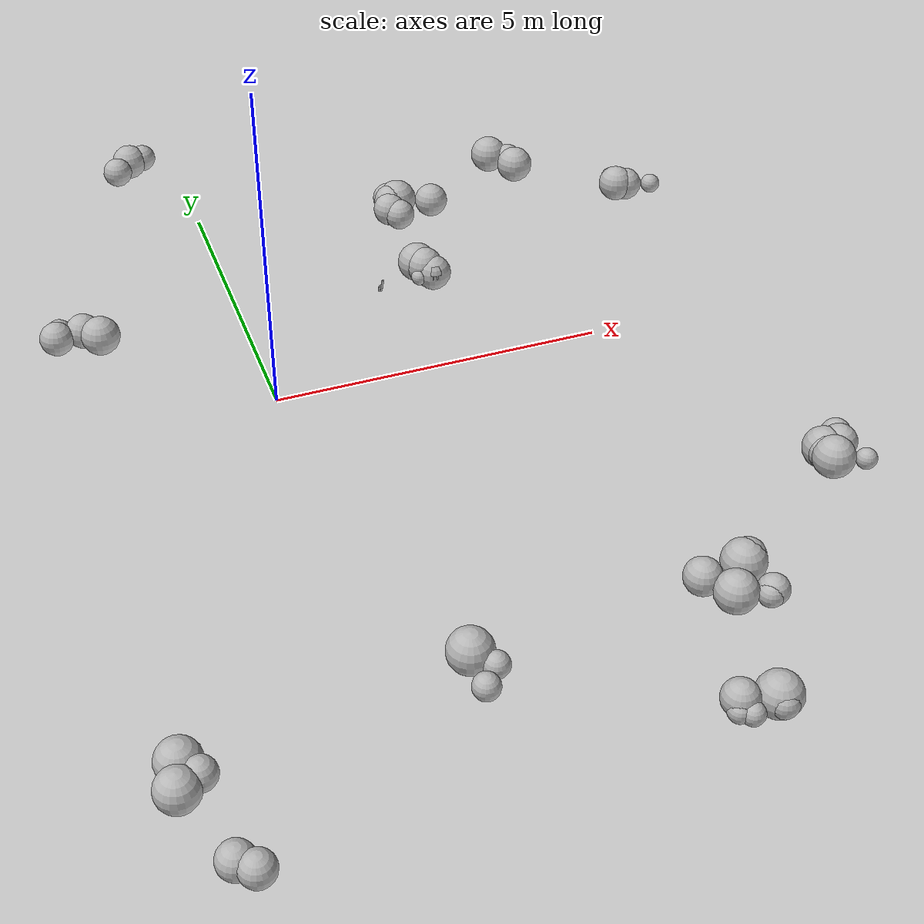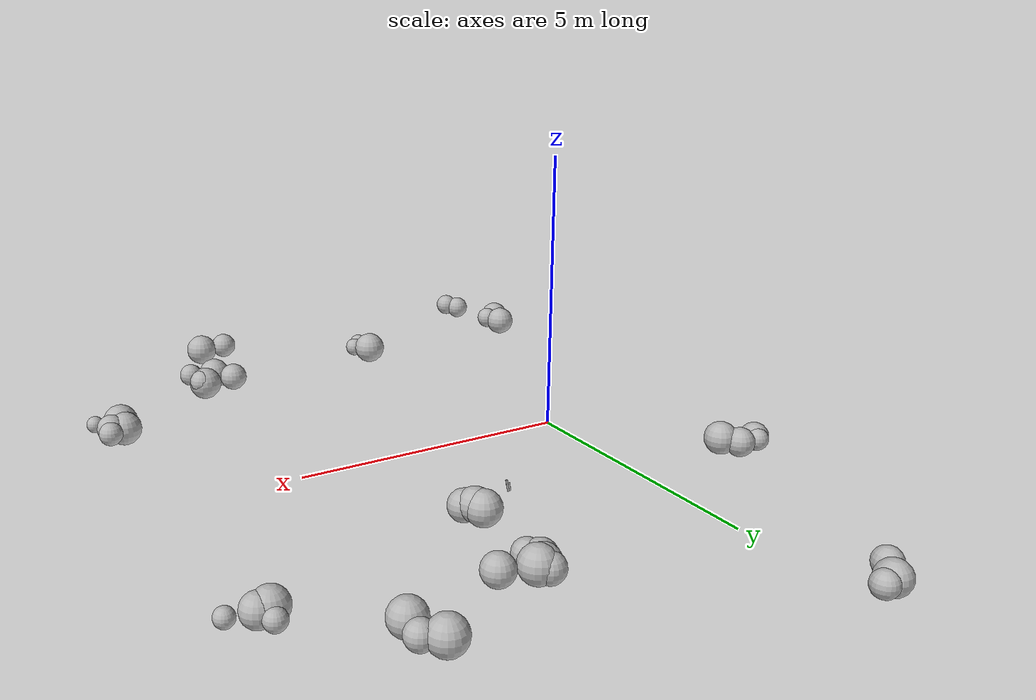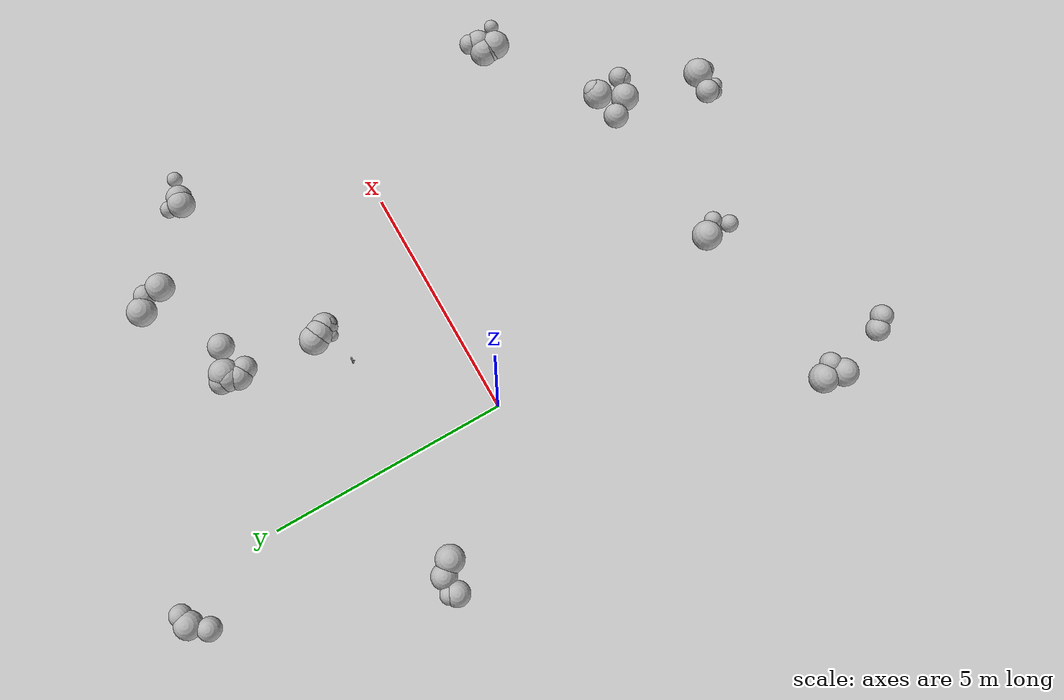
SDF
<sdf version="1.6">
 <world name="default">
  <model name="rock_44">
   <static>true</static>
   <link name="stone0">
    <pose>-2.3756 2.5651 0.0451 0 0 2.188</pose>
    <visual name="stone0_v">
     <geometry><sphere><radius>0.2664</radius></sphere></geometry>
     <material>
      <script>
       <uri>model://bushfire/materials/scripts</uri>
       <uri>model://bushfire/materials/textures</uri>
       <name>Bushfire/Rock</name>
      </script>
     </material>
    </visual>
   </link>
   <link name="stone1">
    <pose>-2.7897 2.4955 0.0442 0 0 1.252</pose>
    <visual name="stone1_v">
     <geometry><sphere><radius>0.2603</radius></sphere></geometry>
     <material>
      <script>
       <uri>model://bushfire/materials/scripts</uri>
       <uri>model://bushfire/materials/textures</uri>
       <name>Bushfire/Rock</name>
      </script>
     </material>
    </visual>
   </link>
   <link name="stone2">
    <pose>-2.1517 2.3070 0.0814 0 0 2.748</pose>
    <visual name="stone2_v">
     <geometry><sphere><radius>0.2985</radius></sphere></geometry>
     <material>
      <script>
       <uri>model://bushfire/materials/scripts</uri>
       <uri>model://bushfire/materials/textures</uri>
       <name>Bushfire/Rock</name>
      </script>
     </material>
    </visual>
   </link>
   <link name="stone3">
    <pose>-2.7273 2.6309 0.0515 0 0 1.274</pose>
    <visual name="stone3_v">
     <geometry><sphere><radius>0.2045</radius></sphere></geometry>
     <material>
      <script>
       <uri>model://bushfire/materials/scripts</uri>
       <uri>model://bushfire/materials/textures</uri>
       <name>Bushfire/Rock</name>
      </script>
     </material>
    </visual>
   </link>
  </model>
  <model name="rock_45">
   <static>true</static>
   <link name="stone0">
    <pose>3.0464 2.5984 0.0729 0 0 1.663</pose>
    <visual name="stone0_v">
     <geometry><sphere><radius>0.3096</radius></sphere></geometry>
     <material>
      <script>
       <uri>model://bushfire/materials/scripts</uri>
       <uri>model://bushfire/materials/textures</uri>
       <name>Bushfire/Rock</name>
      </script>
     </material>
    </visual>
   </link>
   <link name="stone1">
    <pose>3.2072 2.2348 0.0654 0 0 1.491</pose>
    <visual name="stone1_v">
     <geometry><sphere><radius>0.2198</radius></sphere></geometry>
     <material>
      <script>
       <uri>model://bushfire/materials/scripts</uri>
       <uri>model://bushfire/materials/textures</uri>
       <name>Bushfire/Rock</name>
      </script>
     </material>
    </visual>
   </link>
   <link name="stone2">
    <pose>3.2156 2.2868 0.0318 0 0 2.602</pose>
    <visual name="stone2_v">
     <geometry><sphere><radius>0.2789</radius></sphere></geometry>
     <material>
      <script>
       <uri>model://bushfire/materials/scripts</uri>
       <uri>model://bushfire/materials/textures</uri>
       <name>Bushfire/Rock</name>
      </script>
     </material>
    </visual>
   </link>
   <link name="stone3">
    <pose>2.9695 2.2450 0.0261 0 0 2.084</pose>
    <visual name="stone3_v">
     <geometry><sphere><radius>0.1328</radius></sphere></geometry>
     <material>
      <script>
       <uri>model://bushfire/materials/scripts</uri>
       <uri>model://bushfire/materials/textures</uri>
       <name>Bushfire/Rock</name>
      </script>
     </material>
    </visual>
   </link>
   <link name="stone4">
    <pose>3.1129 2.4469 0.0903 0 0 2.007</pose>
    <visual name="stone4_v">
     <geometry><sphere><radius>0.2938</radius></sphere></geometry>
     <material>
      <script>
       <uri>model://bushfire/materials/scripts</uri>
       <uri>model://bushfire/materials/textures</uri>
       <name>Bushfire/Rock</name>
      </script>
     </material>
    </visual>
   </link>
  </model>
  <model name="rock_46">
   <static>true</static>
   <link name="stone0">
    <pose>-2.9336 -6.4489 0.0587 0 0 0.824</pose>
    <visual name="stone0_v">
     <geometry><sphere><radius>0.2266</radius></sphere></geometry>
     <material>
      <script>
       <uri>model://bushfire/materials/scripts</uri>
       <uri>model://bushfire/materials/textures</uri>
       <name>Bushfire/Rock</name>
      </script>
     </material>
    </visual>
   </link>
   <link name="stone1">
    <pose>-2.5956 -6.2940 0.0691 0 0 0.078</pose>
    <visual name="stone1_v">
     <geometry><sphere><radius>0.2265</radius></sphere></geometry>
     <material>
      <script>
       <uri>model://bushfire/materials/scripts</uri>
       <uri>model://bushfire/materials/textures</uri>
       <name>Bushfire/Rock</name>
      </script>
     </material>
    </visual>
   </link>
   <link name="stone2">
    <pose>-2.8853 -6.4292 0.0592 0 0 2.013</pose>
    <visual name="stone2_v">
     <geometry><sphere><radius>0.2943</radius></sphere></geometry>
     <material>
      <script>
       <uri>model://bushfire/materials/scripts</uri>
       <uri>model://bushfire/materials/textures</uri>
       <name>Bushfire/Rock</name>
      </script>
     </material>
    </visual>
   </link>
   <link name="stone3">
    <pose>-2.7826 -6.0137 0.0355 0 0 1.840</pose>
    <visual name="stone3_v">
     <geometry><sphere><radius>0.3046</radius></sphere></geometry>
     <material>
      <script>
       <uri>model://bushfire/materials/scripts</uri>
       <uri>model://bushfire/materials/textures</uri>
       <name>Bushfire/Rock</name>
      </script>
     </material>
    </visual>
   </link>
   <link name="stone4">
    <pose>-2.9383 -6.3041 0.0153 0 0 2.892</pose>
    <visual name="stone4_v">
     <geometry><sphere><radius>0.1303</radius></sphere></geometry>
     <material>
      <script>
       <uri>model://bushfire/materials/scripts</uri>
       <uri>model://bushfire/materials/textures</uri>
       <name>Bushfire/Rock</name>
      </script>
     </material>
    </visual>
   </link>
  </model>
  <model name="rock_47">
   <static>true</static>
   <link name="stone0">
    <pose>7.6455 3.5832 0.0342 0 0 0.659</pose>
    <visual name="stone0_v">
     <geometry><sphere><radius>0.1586</radius></sphere></geometry>
     <material>
      <script>
       <uri>model://bushfire/materials/scripts</uri>
       <uri>model://bushfire/materials/textures</uri>
       <name>Bushfire/Rock</name>
      </script>
     </material>
    </visual>
   </link>
   <link name="stone1">
    <pose>7.0432 3.6952 0.0974 0 0 2.483</pose>
    <visual name="stone1_v">
     <geometry><sphere><radius>0.2884</radius></sphere></geometry>
     <material>
      <script>
       <uri>model://bushfire/materials/scripts</uri>
       <uri>model://bushfire/materials/textures</uri>
       <name>Bushfire/Rock</name>
      </script>
     </material>
    </visual>
   </link>
   <link name="stone2">
    <pose>7.0892 3.9735 0.0367 0 0 1.984</pose>
    <visual name="stone2_v">
     <geometry><sphere><radius>0.1801</radius></sphere></geometry>
     <material>
      <script>
       <uri>model://bushfire/materials/scripts</uri>
       <uri>model://bushfire/materials/textures</uri>
       <name>Bushfire/Rock</name>
      </script>
     </material>
    </visual>
   </link>
   <link name="stone3">
    <pose>7.0759 3.5905 0.0386 0 0 0.063</pose>
    <visual name="stone3_v">
     <geometry><sphere><radius>0.1567</radius></sphere></geometry>
     <material>
      <script>
       <uri>model://bushfire/materials/scripts</uri>
       <uri>model://bushfire/materials/textures</uri>
       <name>Bushfire/Rock</name>
      </script>
     </material>
    </visual>
   </link>
   <link name="stone4">
    <pose>7.2111 3.6760 0.0635 0 0 3.135</pose>
    <visual name="stone4_v">
     <geometry><sphere><radius>0.2684</radius></sphere></geometry>
     <material>
      <script>
       <uri>model://bushfire/materials/scripts</uri>
       <uri>model://bushfire/materials/textures</uri>
       <name>Bushfire/Rock</name>
      </script>
     </material>
    </visual>
   </link>
  </model>
  <model name="rock_48">
   <static>true</static>
   <link name="stone0">
    <pose>3.1266 4.2779 0.0479 0 0 3.137</pose>
    <visual name="stone0_v">
     <geometry><sphere><radius>0.2696</radius></sphere></geometry>
     <material>
      <script>
       <uri>model://bushfire/materials/scripts</uri>
       <uri>model://bushfire/materials/textures</uri>
       <name>Bushfire/Rock</name>
      </script>
     </material>
    </visual>
   </link>
   <link name="stone1">
    <pose>3.2410 4.0964 0.0274 0 0 0.397</pose>
    <visual name="stone1_v">
     <geometry><sphere><radius>0.2475</radius></sphere></geometry>
     <material>
      <script>
       <uri>model://bushfire/materials/scripts</uri>
       <uri>model://bushfire/materials/textures</uri>
       <name>Bushfire/Rock</name>
      </script>
     </material>
    </visual>
   </link>
   <link name="stone2">
    <pose>3.8800 4.3212 0.0460 0 0 2.386</pose>
    <visual name="stone2_v">
     <geometry><sphere><radius>0.2724</radius></sphere></geometry>
     <material>
      <script>
       <uri>model://bushfire/materials/scripts</uri>
       <uri>model://bushfire/materials/textures</uri>
       <name>Bushfire/Rock</name>
      </script>
     </material>
    </visual>
   </link>
   <link name="stone3">
    <pose>3.2204 4.4701 0.0634 0 0 2.609</pose>
    <visual name="stone3_v">
     <geometry><sphere><radius>0.2920</radius></sphere></geometry>
     <material>
      <script>
       <uri>model://bushfire/materials/scripts</uri>
       <uri>model://bushfire/materials/textures</uri>
       <name>Bushfire/Rock</name>
      </script>
     </material>
    </visual>
   </link>
   <link name="stone4">
    <pose>3.2119 4.6283 0.0365 0 0 3.062</pose>
    <visual name="stone4_v">
     <geometry><sphere><radius>0.2570</radius></sphere></geometry>
     <material>
      <script>
       <uri>model://bushfire/materials/scripts</uri>
       <uri>model://bushfire/materials/textures</uri>
       <name>Bushfire/Rock</name>
      </script>
     </material>
    </visual>
   </link>
   <link name="stone5">
    <pose>3.3290 4.5086 0.0695 0 0 0.814</pose>
    <visual name="stone5_v">
     <geometry><sphere><radius>0.3180</radius></sphere></geometry>
     <material>
      <script>
       <uri>model://bushfire/materials/scripts</uri>
       <uri>model://bushfire/materials/textures</uri>
       <name>Bushfire/Rock</name>
      </script>
     </material>
    </visual>
   </link>
  </model>
  <model name="rock_49">
   <static>true</static>
   <link name="stone0">
    <pose>-2.4861 -7.5438 0.0357 0 0 2.746</pose>
    <visual name="stone0_v">
     <geometry><sphere><radius>0.2445</radius></sphere></geometry>
     <material>
      <script>
       <uri>model://bushfire/materials/scripts</uri>
       <uri>model://bushfire/materials/textures</uri>
       <name>Bushfire/Rock</name>
      </script>
     </material>
    </visual>
   </link>
   <link name="stone1">
    <pose>-2.4123 -7.6126 0.0435 0 0 1.399</pose>
    <visual name="stone1_v">
     <geometry><sphere><radius>0.1466</radius></sphere></geometry>
     <material>
      <script>
       <uri>model://bushfire/materials/scripts</uri>
       <uri>model://bushfire/materials/textures</uri>
       <name>Bushfire/Rock</name>
      </script>
     </material>
    </visual>
   </link>
   <link name="stone2">
    <pose>-2.2958 -7.7557 0.0793 0 0 2.563</pose>
    <visual name="stone2_v">
     <geometry><sphere><radius>0.2339</radius></sphere></geometry>
     <material>
      <script>
       <uri>model://bushfire/materials/scripts</uri>
       <uri>model://bushfire/materials/textures</uri>
       <name>Bushfire/Rock</name>
      </script>
     </material>
    </visual>
   </link>
   <link name="stone3">
    <pose>-2.3142 -7.7879 0.0245 0 0 2.912</pose>
    <visual name="stone3_v">
     <geometry><sphere><radius>0.1659</radius></sphere></geometry>
     <material>
      <script>
       <uri>model://bushfire/materials/scripts</uri>
       <uri>model://bushfire/materials/textures</uri>
       <name>Bushfire/Rock</name>
      </script>
     </material>
    </visual>
   </link>
  </model>
  <model name="rock_50">
   <static>true</static>
   <link name="stone0">
    <pose>7.4139 -4.0282 0.0506 0 0 1.384</pose>
    <visual name="stone0_v">
     <geometry><sphere><radius>0.1548</radius></sphere></geometry>
     <material>
      <script>
       <uri>model://bushfire/materials/scripts</uri>
       <uri>model://bushfire/materials/textures</uri>
       <name>Bushfire/Rock</name>
      </script>
     </material>
    </visual>
   </link>
   <link name="stone1">
    <pose>6.9592 -3.7147 0.0556 0 0 1.761</pose>
    <visual name="stone1_v">
     <geometry><sphere><radius>0.2735</radius></sphere></geometry>
     <material>
      <script>
       <uri>model://bushfire/materials/scripts</uri>
       <uri>model://bushfire/materials/textures</uri>
       <name>Bushfire/Rock</name>
      </script>
     </material>
    </visual>
   </link>
   <link name="stone2">
    <pose>7.2164 -3.6035 0.0753 0 0 2.969</pose>
    <visual name="stone2_v">
     <geometry><sphere><radius>0.2629</radius></sphere></geometry>
     <material>
      <script>
       <uri>model://bushfire/materials/scripts</uri>
       <uri>model://bushfire/materials/textures</uri>
       <name>Bushfire/Rock</name>
      </script>
     </material>
    </visual>
   </link>
   <link name="stone3">
    <pose>6.9778 -3.6007 0.0349 0 0 0.580</pose>
    <visual name="stone3_v">
     <geometry><sphere><radius>0.3061</radius></sphere></geometry>
     <material>
      <script>
       <uri>model://bushfire/materials/scripts</uri>
       <uri>model://bushfire/materials/textures</uri>
       <name>Bushfire/Rock</name>
      </script>
     </material>
    </visual>
   </link>
   <link name="stone4">
    <pose>7.2811 -3.4040 0.0570 0 0 2.902</pose>
    <visual name="stone4_v">
     <geometry><sphere><radius>0.2176</radius></sphere></geometry>
     <material>
      <script>
       <uri>model://bushfire/materials/scripts</uri>
       <uri>model://bushfire/materials/textures</uri>
       <name>Bushfire/Rock</name>
      </script>
     </material>
    </visual>
   </link>
   <link name="stone5">
    <pose>6.9783 -3.8757 0.0864 0 0 0.173</pose>
    <visual name="stone5_v">
     <geometry><sphere><radius>0.3098</radius></sphere></geometry>
     <material>
      <script>
       <uri>model://bushfire/materials/scripts</uri>
       <uri>model://bushfire/materials/textures</uri>
       <name>Bushfire/Rock</name>
      </script>
     </material>
    </visual>
   </link>
  </model>
  <model name="rock_51">
   <static>true</static>
   <link name="stone0">
    <pose>5.6684 4.8751 0.0595 0 0 1.911</pose>
    <visual name="stone0_v">
     <geometry><sphere><radius>0.2106</radius></sphere></geometry>
     <material>
      <script>
       <uri>model://bushfire/materials/scripts</uri>
       <uri>model://bushfire/materials/textures</uri>
       <name>Bushfire/Rock</name>
      </script>
     </material>
    </visual>
   </link>
   <link name="stone1">
    <pose>5.6179 4.8595 0.0974 0 0 1.578</pose>
    <visual name="stone1_v">
     <geometry><sphere><radius>0.2978</radius></sphere></geometry>
     <material>
      <script>
       <uri>model://bushfire/materials/scripts</uri>
       <uri>model://bushfire/materials/textures</uri>
       <name>Bushfire/Rock</name>
      </script>
     </material>
    </visual>
   </link>
   <link name="stone2">
    <pose>5.3741 5.3646 0.0177 0 0 0.149</pose>
    <visual name="stone2_v">
     <geometry><sphere><radius>0.1361</radius></sphere></geometry>
     <material>
      <script>
       <uri>model://bushfire/materials/scripts</uri>
       <uri>model://bushfire/materials/textures</uri>
       <name>Bushfire/Rock</name>
      </script>
     </material>
    </visual>
   </link>
   <link name="stone3">
    <pose>5.6304 5.2153 0.0290 0 0 2.205</pose>
    <visual name="stone3_v">
     <geometry><sphere><radius>0.2330</radius></sphere></geometry>
     <material>
      <script>
       <uri>model://bushfire/materials/scripts</uri>
       <uri>model://bushfire/materials/textures</uri>
       <name>Bushfire/Rock</name>
      </script>
     </material>
    </visual>
   </link>
   <link name="stone4">
    <pose>5.3432 5.4171 0.0445 0 0 1.055</pose>
    <visual name="stone4_v">
     <geometry><sphere><radius>0.3065</radius></sphere></geometry>
     <material>
      <script>
       <uri>model://bushfire/materials/scripts</uri>
       <uri>model://bushfire/materials/textures</uri>
       <name>Bushfire/Rock</name>
      </script>
     </material>
    </visual>
   </link>
  </model>
  <model name="rock_52">
   <static>true</static>
   <link name="stone0">
    <pose>0.9556 -5.5738 0.0765 0 0 0.135</pose>
    <visual name="stone0_v">
     <geometry><sphere><radius>0.3162</radius></sphere></geometry>
     <material>
      <script>
       <uri>model://bushfire/materials/scripts</uri>
       <uri>model://bushfire/materials/textures</uri>
       <name>Bushfire/Rock</name>
      </script>
     </material>
    </visual>
   </link>
   <link name="stone1">
    <pose>0.9566 -6.1354 0.0289 0 0 0.206</pose>
    <visual name="stone1_v">
     <geometry><sphere><radius>0.1875</radius></sphere></geometry>
     <material>
      <script>
       <uri>model://bushfire/materials/scripts</uri>
       <uri>model://bushfire/materials/textures</uri>
       <name>Bushfire/Rock</name>
      </script>
     </material>
    </visual>
   </link>
   <link name="stone2">
    <pose>1.1866 -5.8676 0.0480 0 0 1.642</pose>
    <visual name="stone2_v">
     <geometry><sphere><radius>0.1844</radius></sphere></geometry>
     <material>
      <script>
       <uri>model://bushfire/materials/scripts</uri>
       <uri>model://bushfire/materials/textures</uri>
       <name>Bushfire/Rock</name>
      </script>
     </material>
    </visual>
   </link>
  </model>
  <model name="rock_53">
   <static>true</static>
   <link name="stone0">
    <pose>-0.8288 7.2931 0.0183 0 0 1.002</pose>
    <visual name="stone0_v">
     <geometry><sphere><radius>0.1602</radius></sphere></geometry>
     <material>
      <script>
       <uri>model://bushfire/materials/scripts</uri>
       <uri>model://bushfire/materials/textures</uri>
       <name>Bushfire/Rock</name>
      </script>
     </material>
    </visual>
   </link>
   <link name="stone1">
    <pose>-1.0044 6.9290 0.0759 0 0 1.757</pose>
    <visual name="stone1_v">
     <geometry><sphere><radius>0.2411</radius></sphere></geometry>
     <material>
      <script>
       <uri>model://bushfire/materials/scripts</uri>
       <uri>model://bushfire/materials/textures</uri>
       <name>Bushfire/Rock</name>
      </script>
     </material>
    </visual>
   </link>
   <link name="stone2">
    <pose>-0.7909 7.2628 0.0549 0 0 0.169</pose>
    <visual name="stone2_v">
     <geometry><sphere><radius>0.1740</radius></sphere></geometry>
     <material>
      <script>
       <uri>model://bushfire/materials/scripts</uri>
       <uri>model://bushfire/materials/textures</uri>
       <name>Bushfire/Rock</name>
      </script>
     </material>
    </visual>
   </link>
   <link name="stone3">
    <pose>-0.7369 7.2562 0.0517 0 0 3.043</pose>
    <visual name="stone3_v">
     <geometry><sphere><radius>0.2879</radius></sphere></geometry>
     <material>
      <script>
       <uri>model://bushfire/materials/scripts</uri>
       <uri>model://bushfire/materials/textures</uri>
       <name>Bushfire/Rock</name>
      </script>
     </material>
    </visual>
   </link>
   <link name="stone4">
    <pose>-0.4985 7.3153 0.0492 0 0 2.323</pose>
    <visual name="stone4_v">
     <geometry><sphere><radius>0.2233</radius></sphere></geometry>
     <material>
      <script>
       <uri>model://bushfire/materials/scripts</uri>
       <uri>model://bushfire/materials/textures</uri>
       <name>Bushfire/Rock</name>
      </script>
     </material>
    </visual>
   </link>
  </model>
  <model name="rock_54">
   <static>true</static>
   <link name="stone0">
    <pose>3.7313 -7.3433 0.0795 0 0 1.028</pose>
    <visual name="stone0_v">
     <geometry><sphere><radius>0.2537</radius></sphere></geometry>
     <material>
      <script>
       <uri>model://bushfire/materials/scripts</uri>
       <uri>model://bushfire/materials/textures</uri>
       <name>Bushfire/Rock</name>
      </script>
     </material>
    </visual>
   </link>
   <link name="stone1">
    <pose>3.6575 -7.4832 0.0249 0 0 2.460</pose>
    <visual name="stone1_v">
     <geometry><sphere><radius>0.1612</radius></sphere></geometry>
     <material>
      <script>
       <uri>model://bushfire/materials/scripts</uri>
       <uri>model://bushfire/materials/textures</uri>
       <name>Bushfire/Rock</name>
      </script>
     </material>
    </visual>
   </link>
   <link name="stone2">
    <pose>4.1996 -7.5660 0.0493 0 0 0.924</pose>
    <visual name="stone2_v">
     <geometry><sphere><radius>0.2011</radius></sphere></geometry>
     <material>
      <script>
       <uri>model://bushfire/materials/scripts</uri>
       <uri>model://bushfire/materials/textures</uri>
       <name>Bushfire/Rock</name>
      </script>
     </material>
    </visual>
   </link>
   <link name="stone3">
    <pose>3.7880 -7.5720 0.0249 0 0 2.648</pose>
    <visual name="stone3_v">
     <geometry><sphere><radius>0.1598</radius></sphere></geometry>
     <material>
      <script>
       <uri>model://bushfire/materials/scripts</uri>
       <uri>model://bushfire/materials/textures</uri>
       <name>Bushfire/Rock</name>
      </script>
     </material>
    </visual>
   </link>
   <link name="stone4">
    <pose>4.2177 -7.4165 0.0358 0 0 1.789</pose>
    <visual name="stone4_v">
     <geometry><sphere><radius>0.3137</radius></sphere></geometry>
     <material>
      <script>
       <uri>model://bushfire/materials/scripts</uri>
       <uri>model://bushfire/materials/textures</uri>
       <name>Bushfire/Rock</name>
      </script>
     </material>
    </visual>
   </link>
  </model>
  <model name="rock_55">
   <static>true</static>
   <link name="stone0">
    <pose>4.9396 -5.2162 0.0804 0 0 0.284</pose>
    <visual name="stone0_v">
     <geometry><sphere><radius>0.2476</radius></sphere></geometry>
     <material>
      <script>
       <uri>model://bushfire/materials/scripts</uri>
       <uri>model://bushfire/materials/textures</uri>
       <name>Bushfire/Rock</name>
      </script>
     </material>
    </visual>
   </link>
   <link name="stone1">
    <pose>4.8697 -5.2512 0.0321 0 0 2.339</pose>
    <visual name="stone1_v">
     <geometry><sphere><radius>0.3149</radius></sphere></geometry>
     <material>
      <script>
       <uri>model://bushfire/materials/scripts</uri>
       <uri>model://bushfire/materials/textures</uri>
       <name>Bushfire/Rock</name>
      </script>
     </material>
    </visual>
   </link>
   <link name="stone2">
    <pose>4.9206 -5.9038 0.0414 0 0 1.711</pose>
    <visual name="stone2_v">
     <geometry><sphere><radius>0.1859</radius></sphere></geometry>
     <material>
      <script>
       <uri>model://bushfire/materials/scripts</uri>
       <uri>model://bushfire/materials/textures</uri>
       <name>Bushfire/Rock</name>
      </script>
     </material>
    </visual>
   </link>
   <link name="stone3">
    <pose>4.9802 -5.8534 0.0476 0 0 2.688</pose>
    <visual name="stone3_v">
     <geometry><sphere><radius>0.2198</radius></sphere></geometry>
     <material>
      <script>
       <uri>model://bushfire/materials/scripts</uri>
       <uri>model://bushfire/materials/textures</uri>
       <name>Bushfire/Rock</name>
      </script>
     </material>
    </visual>
   </link>
   <link name="stone4">
    <pose>4.2368 -5.3347 0.0373 0 0 2.687</pose>
    <visual name="stone4_v">
     <geometry><sphere><radius>0.2660</radius></sphere></geometry>
     <material>
      <script>
       <uri>model://bushfire/materials/scripts</uri>
       <uri>model://bushfire/materials/textures</uri>
       <name>Bushfire/Rock</name>
      </script>
     </material>
    </visual>
   </link>
   <link name="stone5">
    <pose>4.5165 -5.7232 0.0421 0 0 2.596</pose>
    <visual name="stone5_v">
     <geometry><sphere><radius>0.3021</radius></sphere></geometry>
     <material>
      <script>
       <uri>model://bushfire/materials/scripts</uri>
       <uri>model://bushfire/materials/textures</uri>
       <name>Bushfire/Rock</name>
      </script>
     </material>
    </visual>
   </link>
  </model>
  <model name="tussocks">
   <static>true</static>
   <link name="tuft125_1">
    <pose>2.2503 2.1112 0.0618 0 0.3521 4.7217</pose>
    <visual name="tuft125_1_v">
     <geometry><cylinder><radius>0.0167</radius><length>0.1344</length></cylinder></geometry>
     <material>
      <script>
       <uri>model://bushfire/materials/scripts</uri>
       <uri>model://bushfire/materials/textures</uri>
       <name>Bushfire/Tussock</name>
      </script>
     </material>
    </visual>
   </link>
   <link name="tuft125_4">
    <pose>2.2956 2.1213 0.0942 0 0.1808 6.0284</pose>
    <visual name="tuft125_4_v">
     <geometry><cylinder><radius>0.0183</radius><length>0.2047</length></cylinder></geometry>
     <material>
      <script>
       <uri>model://bushfire/materials/scripts</uri>
       <uri>model://bushfire/materials/textures</uri>
       <name>Bushfire/Tussock</name>
      </script>
     </material>
    </visual>
   </link>
  </model>
 </world>
</sdf>
